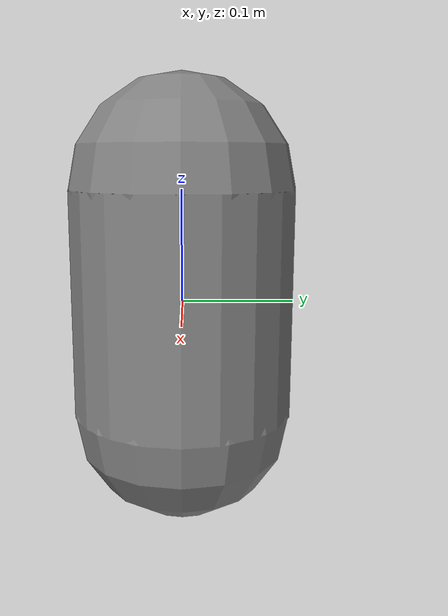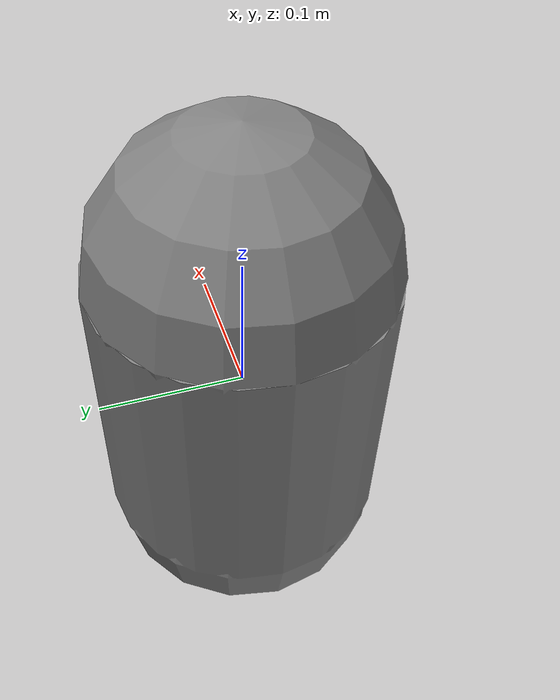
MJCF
<mujoco>
  <worldbody>
    <body>
      <freejoint/>
      <geom type="sphere" size="0.1"/>
    </body>
    <body>
      <freejoint/>
      <geom type="sphere" size="0.1"/>
    </body>
    <body>
      <freejoint/>
      <geom type="capsule" size="0.1 0.1"/>
    </body>
    <body>
      <freejoint/>
      <geom type="sphere" size="0.1"/>
    </body>

    <body>
      <freejoint/>
      <!-- self collision -->
      <geom type="sphere" size="0.1"/>
      <geom type="sphere" size="0.1"/>
      <!-- parent-child self collision -->
      <body>
        <geom type="sphere" size="0.1"/>
        <joint type="hinge"/>
      </body>
    </body>
  </worldbody>

  <keyframe>
    <key qpos='0 0 0 1 0 0 0
               1 0 0 1 0 0 0
               2 0 0 1 0 0 0
               3 0 0 1 0 0 0
               4 0 0 1 0 0 0
               0'/>
    <key qpos='0 0 0 1 0 0 0
               .05 0 0 1 0 0 0
               2 0 0 1 0 0 0
               3 0 0 1 0 0 0
               4 0 0 1 0 0 0
               0'/>
    <key qpos='0 0 0 1 0 0 0
               .01 0 0 1 0 0 0
               .02 0 0 1 0 0 0
               3 0 0 1 0 0 0
               4 0 0 1 0 0 0
               0'/>
    <key qpos='0 0 0 1 0 0 0
               1 0 0 1 0 0 0
               2 0 0 1 0 0 0
               2 0 0 1 0 0 0
               4 0 0 1 0 0 0
               0'/>
  </keyframe>
</mujoco>
